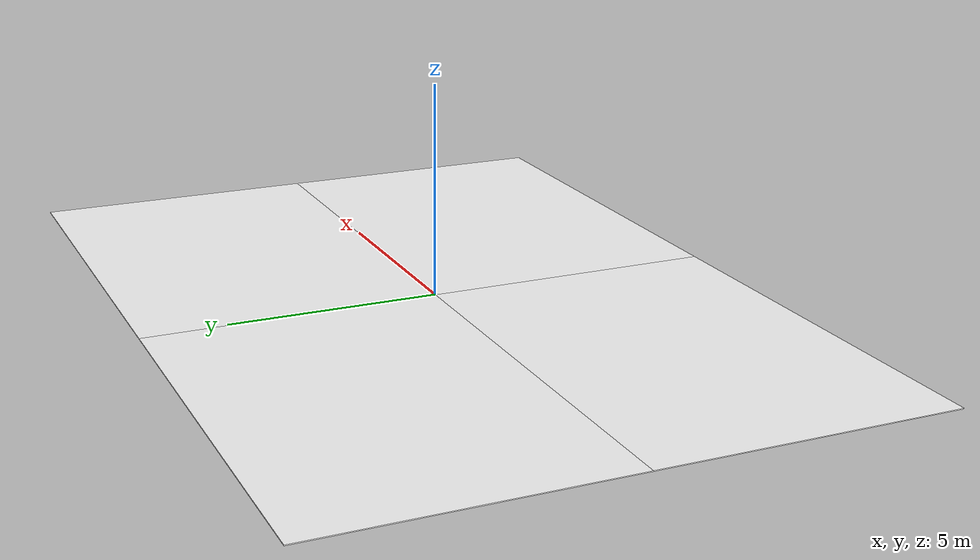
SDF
<?xml version="1.0" encoding="UTF-8"?>
<sdf version="1.9">
  <model name="indoor_house">
    <static>true</static>
    <link name="floor">
      <collision name="floor_collision">
        <geometry>
          <box><size>20 14 0.02</size></box>
        </geometry>
        <pose>0 0 -0.01 0 0 0</pose>
        <surface>
          <friction><ode/></friction>
          <bounce/>
          <contact/>
        </surface>
      </collision>
      <visual name="floor_tile_sw">
        <pose>-5 -3.5 -0.01 0 0 0</pose>
        <geometry><box><size>10 7 0.02</size></box></geometry>
        <material>
          <diffuse>1 1 1 1</diffuse>
          <specular>0 0 0 1</specular>
          <pbr><metal><albedo_map>model://indoor_house/materials/textures/floor.png</albedo_map><metalness>0</metalness><roughness>1</roughness></metal></pbr>
        </material>
      </visual>
      <visual name="floor_tile_se">
        <pose>5 -3.5 -0.01 0 0 0</pose>
        <geometry><box><size>10 7 0.02</size></box></geometry>
        <material>
          <diffuse>1 1 1 1</diffuse>
          <specular>0 0 0 1</specular>
          <pbr><metal><albedo_map>model://indoor_house/materials/textures/floor.png</albedo_map><metalness>0</metalness><roughness>1</roughness></metal></pbr>
        </material>
      </visual>
      <visual name="floor_tile_nw">
        <pose>-5 3.5 -0.01 0 0 0</pose>
        <geometry><box><size>10 7 0.02</size></box></geometry>
        <material>
          <diffuse>1 1 1 1</diffuse>
          <specular>0 0 0 1</specular>
          <pbr><metal><albedo_map>model://indoor_house/materials/textures/floor.png</albedo_map><metalness>0</metalness><roughness>1</roughness></metal></pbr>
        </material>
      </visual>
      <visual name="floor_tile_ne">
        <pose>5 3.5 -0.01 0 0 0</pose>
        <geometry><box><size>10 7 0.02</size></box></geometry>
        <material>
          <diffuse>1 1 1 1</diffuse>
          <specular>0 0 0 1</specular>
          <pbr><metal><albedo_map>model://indoor_house/materials/textures/floor.png</albedo_map><metalness>0</metalness><roughness>1</roughness></metal></pbr>
        </material>
      </visual>
    </link>
  </model>
</sdf>
